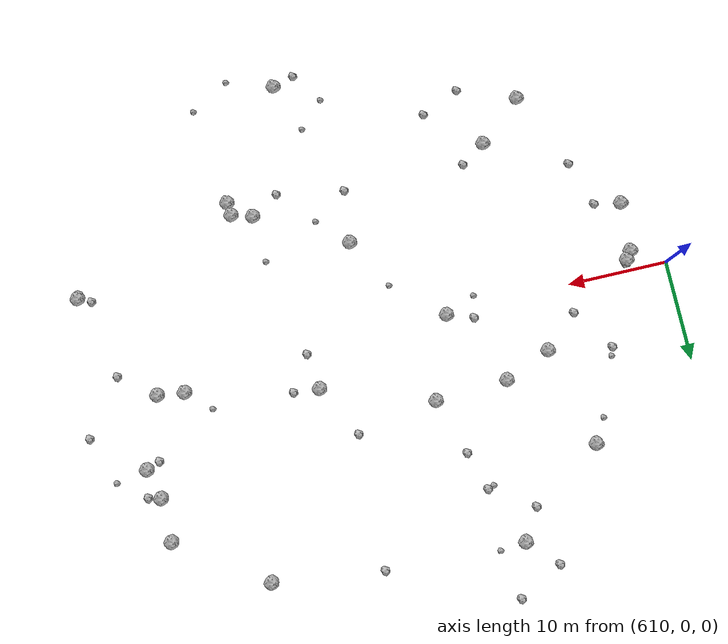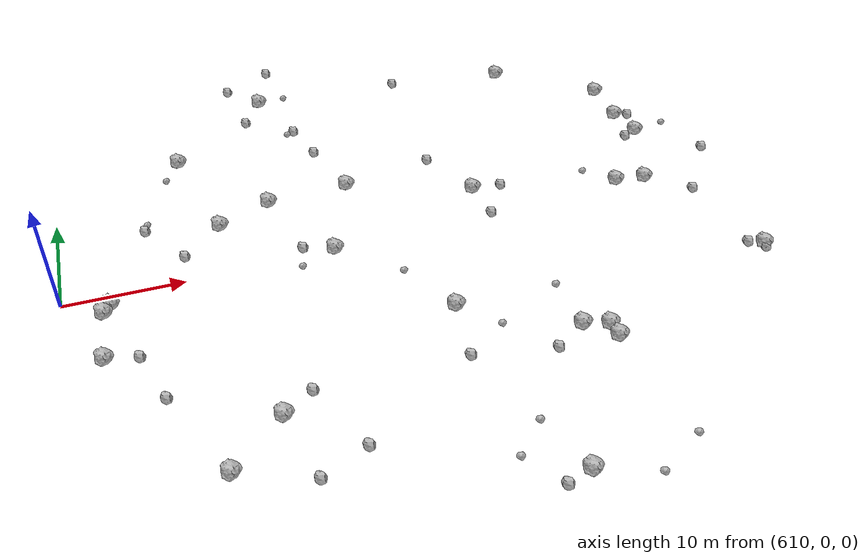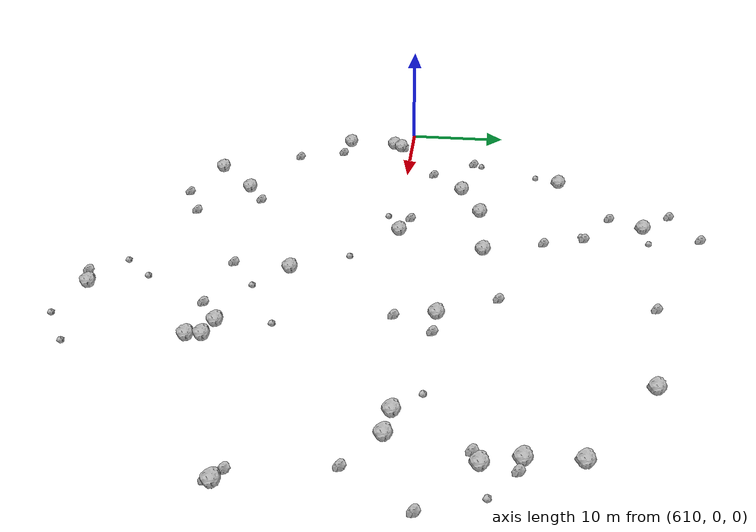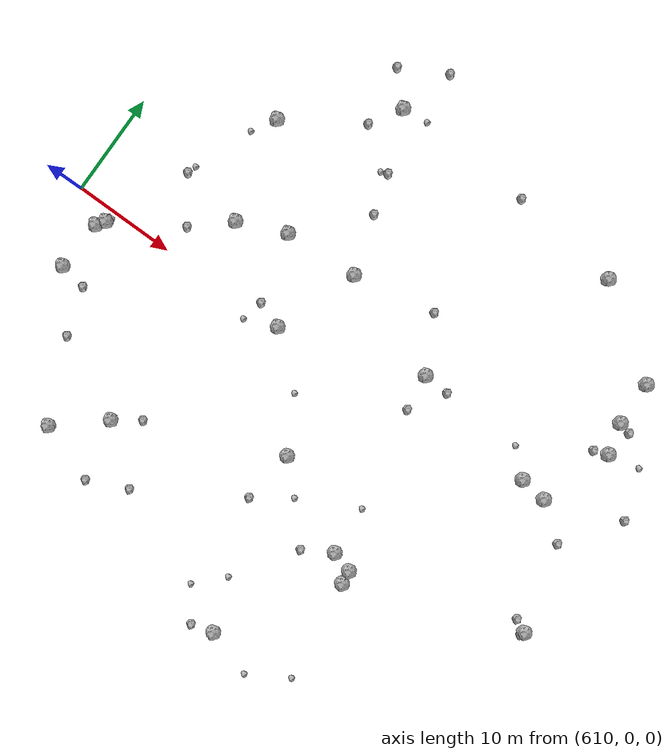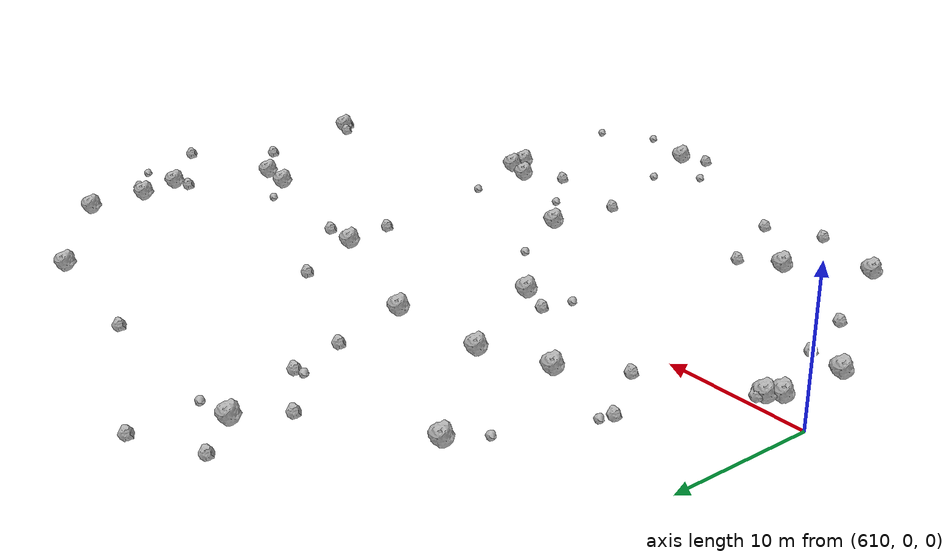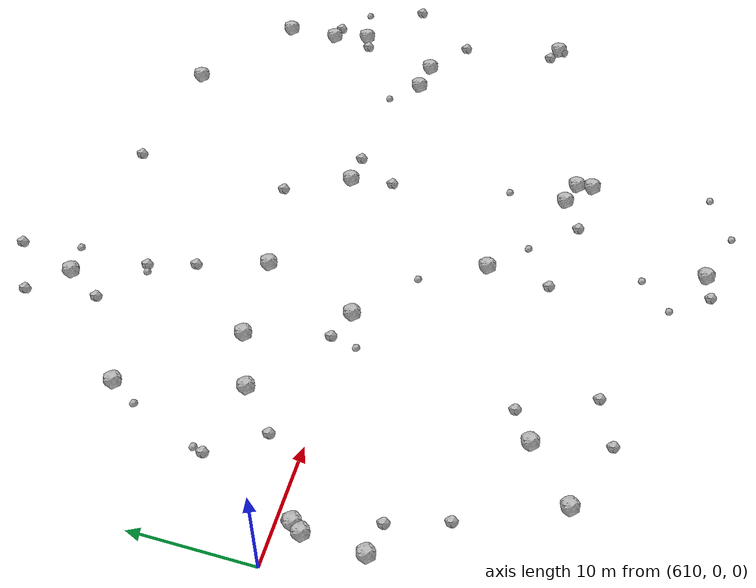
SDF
<sdf version="1.6">
 <world name="default">
  <include><uri>model://sun</uri></include>
  <model name="rock1_16_3">
   <include><uri>model://rock1</uri><pose>621.282186722965 15.892698626388388 0.5 0 0 0</pose></include>
  </model>
  <model name="rock1_16_4">
   <include><uri>model://rock1</uri><pose>623.6923599738788 5.92364940694533 0.5 0 0 0</pose></include>
  </model>
  <model name="rock1_16_5">
   <include><uri>model://rock1</uri><pose>625.0697319135672 -15.92073900617991 0.5 0 0 0</pose></include>
  </model>
  <model name="rock1_16_6">
   <include><uri>model://rock1</uri><pose>613.2969008056069 -1.9869653721970408 0.5 0 0 0</pose></include>
  </model>
  <model name="rock1_16_7">
   <include><uri>model://rock1</uri><pose>651.5050351345658 -15.669030376554232 0.5 0 0 0</pose></include>
  </model>
  <model name="rock1_16_8">
   <include><uri>model://rock1</uri><pose>628.3351579345236 7.874855410581354 0.5 0 0 0</pose></include>
  </model>
  <model name="rock1_16_9">
   <include><uri>model://rock1</uri><pose>667.9829628824967 -9.431623800043507 0.5 0 0 0</pose></include>
  </model>
  <model name="rock1_16_10">
   <include><uri>model://rock1</uri><pose>646.5075029739086 4.623141616317547 0.5 0 0 0</pose></include>
  </model>
  <model name="rock1_16_11">
   <include><uri>model://rock1</uri><pose>663.8535318685919 11.650830253279423 0.5 0 0 0</pose></include>
  </model>
  <model name="rock1_16_12">
   <include><uri>model://rock1</uri><pose>649.2820724848374 -13.736099247146434 0.5 0 0 0</pose></include>
  </model>
  <model name="rock1_16_13">
   <include><uri>model://rock1</uri><pose>640.3911089646423 -9.007537654678273 0.5 0 0 0</pose></include>
  </model>
  <model name="rock1_16_14">
   <include><uri>model://rock1</uri><pose>635.5995268128512 8.31837439489314 0.5 0 0 0</pose></include>
  </model>
  <model name="rock1_16_15">
   <include><uri>model://rock1</uri><pose>664.6482933603588 8.634062388941743 0.5 0 0 0</pose></include>
  </model>
  <model name="rock1_16_16">
   <include><uri>model://rock1</uri><pose>663.716378013236 15.979216540262179 0.5 0 0 0</pose></include>
  </model>
  <model name="rock1_16_17">
   <include><uri>model://rock1</uri><pose>632.6418000343132 0.23346558127312278 0.5 0 0 0</pose></include>
  </model>
  <model name="rock1_16_18">
   <include><uri>model://rock1</uri><pose>613.0327777556424 -6.887459029156005 0.5 0 0 0</pose></include>
  </model>
  <model name="rock1_16_19">
   <include><uri>model://rock1</uri><pose>630.2569438174193 23.59030123852893 0.5 0 0 0</pose></include>
  </model>
  <model name="rock1_16_20">
   <include><uri>model://rock1</uri><pose>651.3559920276878 -14.34895132454659 0.5 0 0 0</pose></include>
  </model>
  <model name="rock1_16_21">
   <include><uri>model://rock1</uri><pose>613.8867210164645 -1.1744984915922672 0.5 0 0 0</pose></include>
  </model>
  <model name="rock1_16_22">
   <include><uri>model://rock1</uri><pose>655.0834508053298 21.904152042754404 0.5 0 0 0</pose></include>
  </model>
  <model name="rock1_16_23">
   <include><uri>model://rock1</uri><pose>662.2094813861936 1.6993108362043152 0.5 0 0 0</pose></include>
  </model>
  <model name="rock1_16_24">
   <include><uri>model://rock1</uri><pose>620.6673260972651 -19.76049158605498 0.5 0 0 0</pose></include>
  </model>
  <model name="rock1_16_25">
   <include><uri>model://rock1</uri><pose>644.4165053419053 -26.391579959144806 0.5 0 0 0</pose></include>
  </model>
  <model name="rock1_16_26">
   <include><uri>model://rock1</uri><pose>659.5267855850076 2.0337377339579277 0.5 0 0 0</pose></include>
  </model>
  <model name="rock2_16_0">
   <include><uri>model://rock2</uri><pose>639.7680952227744 -14.277677748341162 0.3 0 0 0</pose></include>
  </model>
  <model name="rock2_16_1">
   <include><uri>model://rock2</uri><pose>615.6189669685061 -7.37876169515738 0.3 0 0 0</pose></include>
  </model>
  <model name="rock2_16_2">
   <include><uri>model://rock2</uri><pose>628.383777149127 20.57743068512346 0.3 0 0 0</pose></include>
  </model>
  <model name="rock2_16_3">
   <include><uri>model://rock2</uri><pose>627.4867746884435 26.449614629416473 0.3 0 0 0</pose></include>
  </model>
  <model name="rock2_16_4">
   <include><uri>model://rock2</uri><pose>620.2554768496778 2.872653269047582 0.3 0 0 0</pose></include>
  </model>
  <model name="rock2_16_5">
   <include><uri>model://rock2</uri><pose>643.7176929313439 9.868246790445369 0.3 0 0 0</pose></include>
  </model>
  <model name="rock2_16_6">
   <include><uri>model://rock2</uri><pose>665.7009517402872 -0.9426998599111123 0.3 0 0 0</pose></include>
  </model>
  <model name="rock2_16_7">
   <include><uri>model://rock2</uri><pose>627.5027350750978 -14.233370919056886 0.3 0 0 0</pose></include>
  </model>
  <model name="rock2_16_8">
   <include><uri>model://rock2</uri><pose>667.8496594277447 -9.83780209068534 0.3 0 0 0</pose></include>
  </model>
  <model name="rock2_16_9">
   <include><uri>model://rock2</uri><pose>663.313064983419 8.123670261410801 0.3 0 0 0</pose></include>
  </model>
  <model name="rock2_16_10">
   <include><uri>model://rock2</uri><pose>633.768427884739 14.017961146867734 0.3 0 0 0</pose></include>
  </model>
  <model name="rock2_16_11">
   <include><uri>model://rock2</uri><pose>666.721785365741 -8.842123748750652 0.3 0 0 0</pose></include>
  </model>
  <model name="rock2_16_12">
   <include><uri>model://rock2</uri><pose>632.6042433049727 17.88663928519746 0.3 0 0 0</pose></include>
  </model>
  <model name="rock2_16_13">
   <include><uri>model://rock2</uri><pose>669.5317518985067 4.476257771868234 0.3 0 0 0</pose></include>
  </model>
  <model name="rock2_16_14">
   <include><uri>model://rock2</uri><pose>665.0884569244495 11.36077821348919 0.3 0 0 0</pose></include>
  </model>
  <model name="rock2_16_15">
   <include><uri>model://rock2</uri><pose>646.5064667519837 -15.417798706311743 0.3 0 0 0</pose></include>
  </model>
  <model name="rock2_16_16">
   <include><uri>model://rock2</uri><pose>630.0173826025299 1.1646630785114631 0.3 0 0 0</pose></include>
  </model>
  <model name="rock2_16_17">
   <include><uri>model://rock2</uri><pose>626.3757507515411 -21.88680570700923 0.3 0 0 0</pose></include>
  </model>
  <model name="rock2_16_18">
   <include><uri>model://rock2</uri><pose>617.3496537317476 7.032325516022752 0.3 0 0 0</pose></include>
  </model>
  <model name="rock2_16_19">
   <include><uri>model://rock2</uri><pose>646.9704464767808 1.0318639364487723 0.3 0 0 0</pose></include>
  </model>
  <model name="rock2_16_20">
   <include><uri>model://rock2</uri><pose>649.0820061404178 4.4561902624512655 0.3 0 0 0</pose></include>
  </model>
  <model name="rock2_16_21">
   <include><uri>model://rock2</uri><pose>642.271808373649 -27.042486972599356 0.3 0 0 0</pose></include>
  </model>
  <model name="rock2_16_22">
   <include><uri>model://rock2</uri><pose>630.2239190849032 -20.17758437301067 0.3 0 0 0</pose></include>
  </model>
  <model name="rock2_16_23">
   <include><uri>model://rock2</uri><pose>631.8869469201923 28.825878783241876 0.3 0 0 0</pose></include>
  </model>
  <model name="rock2_16_24">
   <include><uri>model://rock2</uri><pose>644.11173408438 23.278587514623773 0.3 0 0 0</pose></include>
  </model>
  <model name="rock2_16_25">
   <include><uri>model://rock2</uri><pose>613.9981584150789 -0.6845039566047504 0.3 0 0 0</pose></include>
  </model>
  <model name="rock2_16_26">
   <include><uri>model://rock2</uri><pose>617.1162209928686 -11.971325192901254 0.3 0 0 0</pose></include>
  </model>
  <model name="rock3_16_0">
   <include><uri>model://rock3</uri><pose>643.2383343084811 -11.877375996265947 0.2 0 0 0</pose></include>
  </model>
  <model name="rock3_16_1">
   <include><uri>model://rock3</uri><pose>629.5464484582684 -1.0630620677234575 0.2 0 0 0</pose></include>
  </model>
  <model name="rock3_16_2">
   <include><uri>model://rock3</uri><pose>617.6086326394708 7.850047859652818 0.2 0 0 0</pose></include>
  </model>
  <model name="rock3_16_3">
   <include><uri>model://rock3</uri><pose>642.5224052240374 -21.47912314028283 0.2 0 0 0</pose></include>
  </model>
  <model name="rock3_16_4">
   <include><uri>model://rock3</uri><pose>631.9393077526562 17.608425256329873 0.2 0 0 0</pose></include>
  </model>
  <model name="rock3_16_5">
   <include><uri>model://rock3</uri><pose>632.766465850093 23.888187622341306 0.2 0 0 0</pose></include>
  </model>
  <model name="rock3_16_6">
   <include><uri>model://rock3</uri><pose>652.8675183339609 -25.69712513572589 0.2 0 0 0</pose></include>
  </model>
  <model name="rock3_16_7">
   <include><uri>model://rock3</uri><pose>619.8632651061663 13.582586884761767 0.2 0 0 0</pose></include>
  </model>
  <model name="rock3_16_8">
   <include><uri>model://rock3</uri><pose>667.7756482746775 9.237352791308332 0.2 0 0 0</pose></include>
  </model>
  <model name="rock3_16_9">
   <include><uri>model://rock3</uri><pose>640.0497082393468 -24.056701123734964 0.2 0 0 0</pose></include>
  </model>
  <model name="rock3_16_10">
   <include><uri>model://rock3</uri><pose>637.5076964044803 -3.91500112628027 0.2 0 0 0</pose></include>
  </model>
  <model name="rock3_16_11">
   <include><uri>model://rock3</uri><pose>649.0289533343807 -27.98380021272132 0.2 0 0 0</pose></include>
  </model>
  <model name="rock3_16_12">
   <include><uri>model://rock3</uri><pose>648.949477794775 -8.996327125819366 0.2 0 0 0</pose></include>
  </model>
  <model name="rock3_16_13">
   <include><uri>model://rock3</uri><pose>657.1444726295126 4.214481897336434 0.2 0 0 0</pose></include>
  </model>
 </world>
</sdf>
